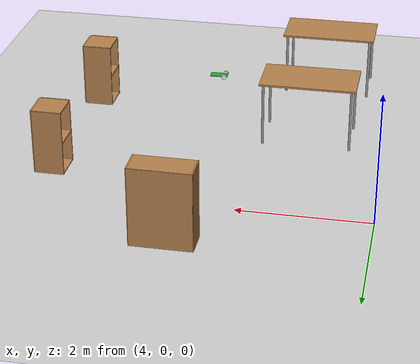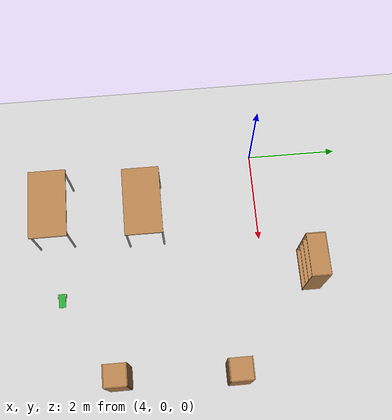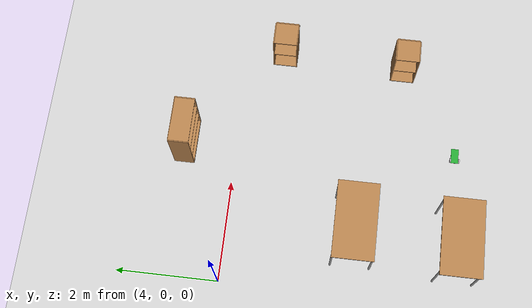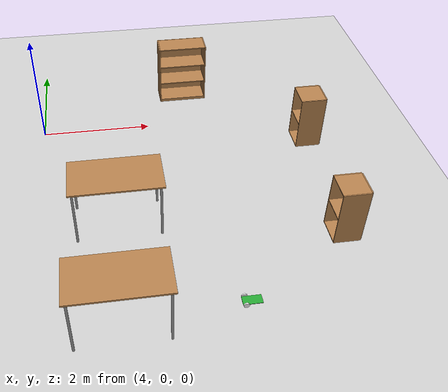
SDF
<sdf version="1.6">
 <world name="default">
  <model name="ground_plane">
   <static>1</static>
   <link name="link">
    <collision name="collision">
     <geometry><plane><normal>0 0 1</normal><size>100 100</size></plane></geometry>
     <surface><friction><ode><mu>100</mu><mu2>50</mu2></ode></friction></surface>
    </collision>
    <visual name="visual">
     <cast_shadows>0</cast_shadows>
     <geometry><plane><normal>0 0 1</normal><size>100 100</size></plane></geometry>
     <material>
      <script><uri>file://media/materials/scripts/gazebo.material</uri><name>Gazebo/Grey</name></script>
     </material>
    </visual>
   </link>
  </model>
  <model name="two_wheel">
   <link name="link_0">
    <pose>-0.000367 0.008018 0.045 0 -0 0</pose>
    <inertial>
     <mass>1</mass>
     <inertia>
      <ixx>0.166667</ixx>
      <ixy>0</ixy>
      <ixz>0</ixz>
      <iyy>0.166667</iyy>
      <iyz>0</iyz>
      <izz>0.166667</izz>
     </inertia>
    </inertial>
    <visual name="visual">
     <geometry><box><size>0.3 0.15 0.01</size></box></geometry>
     <material>
      <lighting>1</lighting>
      <script><uri>file://media/materials/scripts/gazebo.material</uri><name>Gazebo/Green</name></script>
      <ambient>0 1 0 1</ambient>
      <diffuse>0.7 0.7 0.7 1</diffuse>
      <specular>0.01 0.01 0.01 1</specular>
      <emissive>0 0 0 1</emissive>
      <shader type="vertex"><normal_map>__default__</normal_map></shader>
     </material>
    </visual>
    <collision name="collision">
     <geometry><box><size>0.3 0.15 0.01</size></box></geometry>
     <surface>
      <friction>
       <ode><mu>1</mu><mu2>1</mu2><fdir1>0 0 0</fdir1><slip1>0</slip1><slip2>0</slip2></ode>
       <torsional>
        <coefficient>1</coefficient>
        <patch_radius>0</patch_radius>
        <surface_radius>0</surface_radius>
        <use_patch_radius>1</use_patch_radius>
        <ode><slip>0</slip></ode>
       </torsional>
      </friction>
      <bounce><restitution_coefficient>0</restitution_coefficient><threshold>1e+06</threshold></bounce>
      <contact>
       <collide_without_contact>0</collide_without_contact>
       <collide_without_contact_bitmask>1</collide_without_contact_bitmask>
       <collide_bitmask>1</collide_bitmask>
       <ode>
        <soft_cfm>0</soft_cfm>
        <soft_erp>0.2</soft_erp>
        <kp>1e+13</kp>
        <kd>1</kd>
        <max_vel>0.01</max_vel>
        <min_depth>0</min_depth>
       </ode>
       <bullet>
        <split_impulse>1</split_impulse>
        <split_impulse_penetration_threshold>-0.01</split_impulse_penetration_threshold>
        <soft_cfm>0</soft_cfm>
        <soft_erp>0.2</soft_erp>
        <kp>1e+13</kp>
        <kd>1</kd>
       </bullet>
      </contact>
     </surface>
    </collision>
   </link>
   <link name="link_0_0">
    <pose>0.134726 0.004188 0.02 0 -0 0</pose>
    <inertial>
     <mass>1</mass>
     <inertia><ixx>0.1</ixx><ixy>0</ixy><ixz>0</ixz><iyy>0.1</iyy><iyz>0</iyz><izz>0.1</izz></inertia>
    </inertial>
    <visual name="visual">
     <geometry><sphere><radius>0.02</radius></sphere></geometry>
     <material>
      <lighting>1</lighting>
      <script><uri>file://media/materials/scripts/gazebo.material</uri><name>Gazebo/Grey</name></script>
      <ambient>0.3 0.3 0.3 1</ambient>
      <diffuse>0.7 0.7 0.7 1</diffuse>
      <specular>0.01 0.01 0.01 1</specular>
      <emissive>0 0 0 1</emissive>
      <shader type="vertex"><normal_map>__default__</normal_map></shader>
     </material>
    </visual>
    <collision name="collision">
     <geometry><sphere><radius>0.02</radius></sphere></geometry>
     <surface>
      <friction>
       <ode><mu>1</mu><mu2>1</mu2><fdir1>0 0 0</fdir1><slip1>0</slip1><slip2>0</slip2></ode>
       <torsional>
        <coefficient>1</coefficient>
        <patch_radius>0</patch_radius>
        <surface_radius>0</surface_radius>
        <use_patch_radius>1</use_patch_radius>
        <ode><slip>0</slip></ode>
       </torsional>
      </friction>
      <bounce><restitution_coefficient>0</restitution_coefficient><threshold>1e+06</threshold></bounce>
      <contact>
       <collide_without_contact>0</collide_without_contact>
       <collide_without_contact_bitmask>1</collide_without_contact_bitmask>
       <collide_bitmask>1</collide_bitmask>
       <ode>
        <soft_cfm>0</soft_cfm>
        <soft_erp>0.2</soft_erp>
        <kp>1e+13</kp>
        <kd>1</kd>
        <max_vel>0.01</max_vel>
        <min_depth>0</min_depth>
       </ode>
       <bullet>
        <split_impulse>1</split_impulse>
        <split_impulse_penetration_threshold>-0.01</split_impulse_penetration_threshold>
        <soft_cfm>0</soft_cfm>
        <soft_erp>0.2</soft_erp>
        <kp>1e+13</kp>
        <kd>1</kd>
       </bullet>
      </contact>
     </surface>
    </collision>
   </link>
   <link name="link_1">
    <pose>-0.100367 -0.076982 0.045 1.5707 -0 0</pose>
    <inertial>
     <mass>1</mass>
     <inertia><ixx>0.145833</ixx><ixy>0</ixy><ixz>0</ixz><iyy>0.145833</iyy><iyz>0</iyz><izz>0.125</izz></inertia>
    </inertial>
    <visual name="visual">
     <geometry><cylinder><radius>0.045</radius><length>0.02</length></cylinder></geometry>
     <material>
      <lighting>1</lighting>
      <script><uri>file://media/materials/scripts/gazebo.material</uri><name>Gazebo/White</name></script>
      <ambient>1 1 1 1</ambient>
      <diffuse>0.7 0.7 0.7 1</diffuse>
      <specular>0.01 0.01 0.01 1</specular>
      <emissive>0 0 0 1</emissive>
      <shader type="vertex"><normal_map>__default__</normal_map></shader>
     </material>
    </visual>
    <collision name="collision">
     <geometry><cylinder><radius>0.045</radius><length>0.02</length></cylinder></geometry>
     <surface>
      <friction>
       <ode><mu>1</mu><mu2>1</mu2><fdir1>0 0 0</fdir1><slip1>0</slip1><slip2>0</slip2></ode>
       <torsional>
        <coefficient>1</coefficient>
        <patch_radius>0</patch_radius>
        <surface_radius>0</surface_radius>
        <use_patch_radius>1</use_patch_radius>
        <ode><slip>0</slip></ode>
       </torsional>
      </friction>
      <bounce><restitution_coefficient>0</restitution_coefficient><threshold>1e+06</threshold></bounce>
      <contact>
       <collide_without_contact>0</collide_without_contact>
       <collide_without_contact_bitmask>1</collide_without_contact_bitmask>
       <collide_bitmask>1</collide_bitmask>
       <ode>
        <soft_cfm>0</soft_cfm>
        <soft_erp>0.2</soft_erp>
        <kp>1e+13</kp>
        <kd>1</kd>
        <max_vel>0.01</max_vel>
        <min_depth>0</min_depth>
       </ode>
       <bullet>
        <split_impulse>1</split_impulse>
        <split_impulse_penetration_threshold>-0.01</split_impulse_penetration_threshold>
        <soft_cfm>0</soft_cfm>
        <soft_erp>0.2</soft_erp>
        <kp>1e+13</kp>
        <kd>1</kd>
       </bullet>
      </contact>
     </surface>
    </collision>
   </link>
   <link name="link_1_clone">
    <pose>-0.100367 0.093018 0.045 1.5707 -0 0</pose>
    <inertial>
     <mass>1</mass>
     <inertia><ixx>0.145833</ixx><ixy>0</ixy><ixz>0</ixz><iyy>0.145833</iyy><iyz>0</iyz><izz>0.125</izz></inertia>
    </inertial>
    <visual name="visual">
     <geometry><cylinder><radius>0.045</radius><length>0.02</length></cylinder></geometry>
     <material>
      <lighting>1</lighting>
      <script><uri>file://media/materials/scripts/gazebo.material</uri><name>Gazebo/White</name></script>
      <ambient>1 1 1 1</ambient>
      <diffuse>0.7 0.7 0.7 1</diffuse>
      <specular>0.01 0.01 0.01 1</specular>
      <emissive>0 0 0 1</emissive>
      <shader type="vertex"><normal_map>__default__</normal_map></shader>
     </material>
    </visual>
    <collision name="collision">
     <geometry><cylinder><radius>0.045</radius><length>0.02</length></cylinder></geometry>
     <surface>
      <friction>
       <ode><mu>1</mu><mu2>1</mu2><fdir1>0 0 0</fdir1><slip1>0</slip1><slip2>0</slip2></ode>
       <torsional>
        <coefficient>1</coefficient>
        <patch_radius>0</patch_radius>
        <surface_radius>0</surface_radius>
        <use_patch_radius>1</use_patch_radius>
        <ode><slip>0</slip></ode>
       </torsional>
      </friction>
      <bounce><restitution_coefficient>0</restitution_coefficient><threshold>1e+06</threshold></bounce>
      <contact>
       <collide_without_contact>0</collide_without_contact>
       <collide_without_contact_bitmask>1</collide_without_contact_bitmask>
       <collide_bitmask>1</collide_bitmask>
       <ode>
        <soft_cfm>0</soft_cfm>
        <soft_erp>0.2</soft_erp>
        <kp>1e+13</kp>
        <kd>1</kd>
        <max_vel>0.01</max_vel>
        <min_depth>0</min_depth>
       </ode>
       <bullet>
        <split_impulse>1</split_impulse>
        <split_impulse_penetration_threshold>-0.01</split_impulse_penetration_threshold>
        <soft_cfm>0</soft_cfm>
        <soft_erp>0.2</soft_erp>
        <kp>1e+13</kp>
        <kd>1</kd>
       </bullet>
      </contact>
     </surface>
    </collision>
   </link>
   <joint name="link_0_JOINT_1_0" type="ball">
    <parent>link_0</parent>
    <child>link_0_0</child>
    <physics>
     <ode><limit><cfm>0</cfm><erp>0.2</erp></limit><suspension><cfm>0</cfm><erp>0.2</erp></suspension></ode>
    </physics>
   </joint>
   <joint name="link_0_JOINT_1" type="revolute">
    <parent>link_0</parent>
    <child>link_1</child>
    <axis>
     <xyz>0 0 1</xyz>
     <use_parent_model_frame>0</use_parent_model_frame>
     <limit>
      <lower>-1.79769e+308</lower>
      <upper>1.79769e+308</upper>
      <effort>-1</effort>
      <velocity>-1</velocity>
     </limit>
     <dynamics>
      <spring_reference>0</spring_reference>
      <spring_stiffness>0</spring_stiffness>
      <damping>0</damping>
      <friction>0</friction>
     </dynamics>
    </axis>
    <physics>
     <ode><limit><cfm>0</cfm><erp>0.2</erp></limit><suspension><cfm>0</cfm><erp>0.2</erp></suspension></ode>
    </physics>
   </joint>
   <joint name="link_0_JOINT_2" type="revolute">
    <parent>link_0</parent>
    <child>link_1_clone</child>
    <axis>
     <xyz>0 0 1</xyz>
     <use_parent_model_frame>0</use_parent_model_frame>
     <limit>
      <lower>-1.79769e+308</lower>
      <upper>1.79769e+308</upper>
      <effort>-1</effort>
      <velocity>-1</velocity>
     </limit>
     <dynamics>
      <spring_reference>0</spring_reference>
      <spring_stiffness>0</spring_stiffness>
      <damping>0</damping>
      <friction>0</friction>
     </dynamics>
    </axis>
    <physics>
     <ode><limit><cfm>0</cfm><erp>0.2</erp></limit><suspension><cfm>0</cfm><erp>0.2</erp></suspension></ode>
    </physics>
   </joint>
   <static>0</static>
   <pose>7.05936 -4.42746 0 5e-06 4e-06 0.003503</pose>
  </model>
  <model name="table">
   <static>1</static>
   <link name="link">
    <collision name="surface">
     <pose>0 0 1 0 -0 0</pose>
     <geometry><box><size>1.5 0.8 0.03</size></box></geometry>
     <surface><friction><ode><mu>0.6</mu><mu2>0.6</mu2></ode></friction></surface>
    </collision>
    <visual name="visual1">
     <pose>0 0 1 0 -0 0</pose>
     <geometry><box><size>1.5 0.8 0.03</size></box></geometry>
     <material>
      <script><uri>file://media/materials/scripts/gazebo.material</uri><name>Gazebo/Wood</name></script>
     </material>
    </visual>
    <collision name="front_left_leg">
     <pose>0.68 0.38 0.5 0 -0 0</pose>
     <geometry><cylinder><radius>0.02</radius><length>1</length></cylinder></geometry>
    </collision>
    <visual name="front_left_leg">
     <pose>0.68 0.38 0.5 0 -0 0</pose>
     <geometry><cylinder><radius>0.02</radius><length>1</length></cylinder></geometry>
     <material>
      <script><uri>file://media/materials/scripts/gazebo.material</uri><name>Gazebo/Grey</name></script>
     </material>
    </visual>
    <collision name="front_right_leg">
     <pose>0.68 -0.38 0.5 0 -0 0</pose>
     <geometry><cylinder><radius>0.02</radius><length>1</length></cylinder></geometry>
    </collision>
    <visual name="front_right_leg">
     <pose>0.68 -0.38 0.5 0 -0 0</pose>
     <geometry><cylinder><radius>0.02</radius><length>1</length></cylinder></geometry>
     <material>
      <script><uri>file://media/materials/scripts/gazebo.material</uri><name>Gazebo/Grey</name></script>
     </material>
    </visual>
    <collision name="back_right_leg">
     <pose>-0.68 -0.38 0.5 0 -0 0</pose>
     <geometry><cylinder><radius>0.02</radius><length>1</length></cylinder></geometry>
    </collision>
    <visual name="back_right_leg">
     <pose>-0.68 -0.38 0.5 0 -0 0</pose>
     <geometry><cylinder><radius>0.02</radius><length>1</length></cylinder></geometry>
     <material>
      <script><uri>file://media/materials/scripts/gazebo.material</uri><name>Gazebo/Grey</name></script>
     </material>
    </visual>
    <collision name="back_left_leg">
     <pose>-0.68 0.38 0.5 0 -0 0</pose>
     <geometry><cylinder><radius>0.02</radius><length>1</length></cylinder></geometry>
    </collision>
    <visual name="back_left_leg">
     <pose>-0.68 0.38 0.5 0 -0 0</pose>
     <geometry><cylinder><radius>0.02</radius><length>1</length></cylinder></geometry>
     <material>
      <script><uri>file://media/materials/scripts/gazebo.material</uri><name>Gazebo/Grey</name></script>
     </material>
    </visual>
   </link>
   <pose>5.15607 -4.49293 0 0 -0 0</pose>
  </model>
  <model name="table_0">
   <static>1</static>
   <link name="link">
    <collision name="surface">
     <pose>0 0 1 0 -0 0</pose>
     <geometry><box><size>1.5 0.8 0.03</size></box></geometry>
     <surface><friction><ode><mu>0.6</mu><mu2>0.6</mu2></ode></friction></surface>
    </collision>
    <visual name="visual1">
     <pose>0 0 1 0 -0 0</pose>
     <geometry><box><size>1.5 0.8 0.03</size></box></geometry>
     <material>
      <script><uri>file://media/materials/scripts/gazebo.material</uri><name>Gazebo/Wood</name></script>
     </material>
    </visual>
    <collision name="front_left_leg">
     <pose>0.68 0.38 0.5 0 -0 0</pose>
     <geometry><cylinder><radius>0.02</radius><length>1</length></cylinder></geometry>
    </collision>
    <visual name="front_left_leg">
     <pose>0.68 0.38 0.5 0 -0 0</pose>
     <geometry><cylinder><radius>0.02</radius><length>1</length></cylinder></geometry>
     <material>
      <script><uri>file://media/materials/scripts/gazebo.material</uri><name>Gazebo/Grey</name></script>
     </material>
    </visual>
    <collision name="front_right_leg">
     <pose>0.68 -0.38 0.5 0 -0 0</pose>
     <geometry><cylinder><radius>0.02</radius><length>1</length></cylinder></geometry>
    </collision>
    <visual name="front_right_leg">
     <pose>0.68 -0.38 0.5 0 -0 0</pose>
     <geometry><cylinder><radius>0.02</radius><length>1</length></cylinder></geometry>
     <material>
      <script><uri>file://media/materials/scripts/gazebo.material</uri><name>Gazebo/Grey</name></script>
     </material>
    </visual>
    <collision name="back_right_leg">
     <pose>-0.68 -0.38 0.5 0 -0 0</pose>
     <geometry><cylinder><radius>0.02</radius><length>1</length></cylinder></geometry>
    </collision>
    <visual name="back_right_leg">
     <pose>-0.68 -0.38 0.5 0 -0 0</pose>
     <geometry><cylinder><radius>0.02</radius><length>1</length></cylinder></geometry>
     <material>
      <script><uri>file://media/materials/scripts/gazebo.material</uri><name>Gazebo/Grey</name></script>
     </material>
    </visual>
    <collision name="back_left_leg">
     <pose>-0.68 0.38 0.5 0 -0 0</pose>
     <geometry><cylinder><radius>0.02</radius><length>1</length></cylinder></geometry>
    </collision>
    <visual name="back_left_leg">
     <pose>-0.68 0.38 0.5 0 -0 0</pose>
     <geometry><cylinder><radius>0.02</radius><length>1</length></cylinder></geometry>
     <material>
      <script><uri>file://media/materials/scripts/gazebo.material</uri><name>Gazebo/Grey</name></script>
     </material>
    </visual>
   </link>
   <pose>5.25448 -2.49944 0 0 -0 0</pose>
  </model>
  <model name="bookshelf_1">
   <static>1</static>
   <link name="link">
    <inertial><mass>1</mass></inertial>
    <collision name="back">
     <pose>0 0.005 0.6 0 -0 0</pose>
     <geometry><box><size>0.9 0.01 1.2</size></box></geometry>
    </collision>
    <visual name="visual1">
     <pose>0 0.005 0.6 0 -0 0</pose>
     <geometry><box><size>0.9 0.01 1.2</size></box></geometry>
     <material>
      <script><uri>file://media/materials/scripts/gazebo.material</uri><name>Gazebo/Wood</name></script>
     </material>
    </visual>
    <collision name="left_side">
     <pose>0.45 -0.195 0.6 0 -0 0</pose>
     <geometry><box><size>0.02 0.4 1.2</size></box></geometry>
    </collision>
    <visual name="visual2">
     <pose>0.45 -0.195 0.6 0 -0 0</pose>
     <geometry><box><size>0.02 0.4 1.2</size></box></geometry>
     <material>
      <script><uri>file://media/materials/scripts/gazebo.material</uri><name>Gazebo/Wood</name></script>
     </material>
    </visual>
    <collision name="right_side">
     <pose>-0.45 -0.195 0.6 0 -0 0</pose>
     <geometry><box><size>0.02 0.4 1.2</size></box></geometry>
    </collision>
    <visual name="visual3">
     <pose>-0.45 -0.195 0.6 0 -0 0</pose>
     <geometry><box><size>0.02 0.4 1.2</size></box></geometry>
     <material>
      <script><uri>file://media/materials/scripts/gazebo.material</uri><name>Gazebo/Wood</name></script>
     </material>
    </visual>
    <collision name="bottom">
     <pose>0 -0.195 0.03 0 -0 0</pose>
     <geometry><box><size>0.88 0.4 0.06</size></box></geometry>
    </collision>
    <visual name="visual4">
     <pose>0 -0.195 0.03 0 -0 0</pose>
     <geometry><box><size>0.88 0.4 0.06</size></box></geometry>
     <material>
      <script><uri>file://media/materials/scripts/gazebo.material</uri><name>Gazebo/Wood</name></script>
     </material>
    </visual>
    <collision name="top">
     <pose>0 -0.195 1.19 0 -0 0</pose>
     <geometry><box><size>0.88 0.4 0.02</size></box></geometry>
    </collision>
    <visual name="visual5">
     <pose>0 -0.195 1.19 0 -0 0</pose>
     <geometry><box><size>0.88 0.4 0.02</size></box></geometry>
     <material>
      <script><uri>file://media/materials/scripts/gazebo.material</uri><name>Gazebo/Wood</name></script>
     </material>
    </visual>
    <collision name="low_shelf">
     <pose>0 -0.195 0.43 0 -0 0</pose>
     <geometry><box><size>0.88 0.4 0.02</size></box></geometry>
    </collision>
    <visual name="visual6">
     <pose>0 -0.195 0.43 0 -0 0</pose>
     <geometry><box><size>0.88 0.4 0.02</size></box></geometry>
     <material>
      <script><uri>file://media/materials/scripts/gazebo.material</uri><name>Gazebo/Wood</name></script>
     </material>
    </visual>
    <collision name="high_shelf">
     <pose>0 -0.195 0.8 0 -0 0</pose>
     <geometry><box><size>0.88 0.4 0.02</size></box></geometry>
    </collision>
    <visual name="visual7">
     <pose>0 -0.195 0.8 0 -0 0</pose>
     <geometry><box><size>0.88 0.4 0.02</size></box></geometry>
     <material>
      <script><uri>file://media/materials/scripts/gazebo.material</uri><name>Gazebo/Wood</name></script>
     </material>
    </visual>
   </link>
   <pose>6.79856 1.1997 0 0 -0 0</pose>
  </model>
  <model name="cabinet">
   <static>1</static>
   <link name="cabinet_bottom_plate">
    <inertial>
     <pose>0 0 -1 0 -0 0</pose>
     <inertia><ixx>2.05</ixx><ixy>0</ixy><ixz>0</ixz><iyy>2.05</iyy><iyz>0</iyz><izz>2.05</izz></inertia>
     <mass>25</mass>
    </inertial>
    <collision name="cabinet_bottom_plate_geom">
     <pose>0 0 0.01 0 -0 0</pose>
     <geometry><box><size>0.45 0.45 0.02</size></box></geometry>
    </collision>
    <visual name="cabinet_bottom_plate_geom_visual">
     <pose>0 0 0.01 0 -0 0</pose>
     <geometry><box><size>0.45 0.45 0.02</size></box></geometry>
     <material>
      <script><uri>file://media/materials/scripts/gazebo.material</uri><name>Gazebo/Wood</name></script>
     </material>
    </visual>
    <collision name="cabinet_bottom_plate_geom_cabinet_back_plate">
     <pose>0.235 0 0.51 0 -0 0</pose>
     <geometry><box><size>0.02 0.45 1.02</size></box></geometry>
    </collision>
    <visual name="cabinet_bottom_plate_geom_cabinet_back_plate_visual">
     <pose>0.235 0 0.51 0 -0 0</pose>
     <geometry><box><size>0.02 0.45 1.02</size></box></geometry>
     <material>
      <script><uri>file://media/materials/scripts/gazebo.material</uri><name>Gazebo/Wood</name></script>
     </material>
    </visual>
    <collision name="cabinet_bottom_plate_geom_cabinet_left_plate">
     <pose>0 0.235 0.51 0 -0 0</pose>
     <geometry><box><size>0.45 0.02 1.02</size></box></geometry>
    </collision>
    <visual name="cabinet_bottom_plate_geom_cabinet_left_plate_visual">
     <pose>0 0.235 0.51 0 -0 0</pose>
     <geometry><box><size>0.45 0.02 1.02</size></box></geometry>
     <material>
      <script><uri>file://media/materials/scripts/gazebo.material</uri><name>Gazebo/Wood</name></script>
     </material>
    </visual>
    <collision name="cabinet_bottom_plate_geom_cabinet_middle_plate">
     <pose>0 0 0.51 0 -0 0</pose>
     <geometry><box><size>0.45 0.45 0.02</size></box></geometry>
    </collision>
    <visual name="cabinet_bottom_plate_geom_cabinet_middle_plate_visual">
     <pose>0 0 0.51 0 -0 0</pose>
     <geometry><box><size>0.45 0.45 0.02</size></box></geometry>
     <material>
      <script><uri>file://media/materials/scripts/gazebo.material</uri><name>Gazebo/Wood</name></script>
     </material>
    </visual>
    <collision name="cabinet_bottom_plate_geom_cabinet_right_plate">
     <pose>0 -0.235 0.51 0 -0 0</pose>
     <geometry><box><size>0.45 0.02 1.02</size></box></geometry>
    </collision>
    <visual name="cabinet_bottom_plate_geom_cabinet_right_plate_visual">
     <pose>0 -0.235 0.51 0 -0 0</pose>
     <geometry><box><size>0.45 0.02 1.02</size></box></geometry>
     <material>
      <script><uri>file://media/materials/scripts/gazebo.material</uri><name>Gazebo/Wood</name></script>
     </material>
    </visual>
    <collision name="cabinet_bottom_plate_geom_cabinet_top_plate">
     <pose>0 0 1.01 0 -0 0</pose>
     <geometry><box><size>0.45 0.45 0.02</size></box></geometry>
    </collision>
    <visual name="cabinet_bottom_plate_geom_cabinet_top_plate_visual">
     <pose>0 0 1.01 0 -0 0</pose>
     <geometry><box><size>0.45 0.45 0.02</size></box></geometry>
     <material>
      <script><uri>file://media/materials/scripts/gazebo.material</uri><name>Gazebo/Wood</name></script>
     </material>
    </visual>
   </link>
   <pose>8.91587 -0.779866 0 0 -0 0</pose>
  </model>
  <model name="cabinet_0">
   <static>1</static>
   <link name="cabinet_bottom_plate">
    <inertial>
     <pose>0 0 -1 0 -0 0</pose>
     <inertia><ixx>2.05</ixx><ixy>0</ixy><ixz>0</ixz><iyy>2.05</iyy><iyz>0</iyz><izz>2.05</izz></inertia>
     <mass>25</mass>
    </inertial>
    <collision name="cabinet_bottom_plate_geom">
     <pose>0 0 0.01 0 -0 0</pose>
     <geometry><box><size>0.45 0.45 0.02</size></box></geometry>
    </collision>
    <visual name="cabinet_bottom_plate_geom_visual">
     <pose>0 0 0.01 0 -0 0</pose>
     <geometry><box><size>0.45 0.45 0.02</size></box></geometry>
     <material>
      <script><uri>file://media/materials/scripts/gazebo.material</uri><name>Gazebo/Wood</name></script>
     </material>
    </visual>
    <collision name="cabinet_bottom_plate_geom_cabinet_back_plate">
     <pose>0.235 0 0.51 0 -0 0</pose>
     <geometry><box><size>0.02 0.45 1.02</size></box></geometry>
    </collision>
    <visual name="cabinet_bottom_plate_geom_cabinet_back_plate_visual">
     <pose>0.235 0 0.51 0 -0 0</pose>
     <geometry><box><size>0.02 0.45 1.02</size></box></geometry>
     <material>
      <script><uri>file://media/materials/scripts/gazebo.material</uri><name>Gazebo/Wood</name></script>
     </material>
    </visual>
    <collision name="cabinet_bottom_plate_geom_cabinet_left_plate">
     <pose>0 0.235 0.51 0 -0 0</pose>
     <geometry><box><size>0.45 0.02 1.02</size></box></geometry>
    </collision>
    <visual name="cabinet_bottom_plate_geom_cabinet_left_plate_visual">
     <pose>0 0.235 0.51 0 -0 0</pose>
     <geometry><box><size>0.45 0.02 1.02</size></box></geometry>
     <material>
      <script><uri>file://media/materials/scripts/gazebo.material</uri><name>Gazebo/Wood</name></script>
     </material>
    </visual>
    <collision name="cabinet_bottom_plate_geom_cabinet_middle_plate">
     <pose>0 0 0.51 0 -0 0</pose>
     <geometry><box><size>0.45 0.45 0.02</size></box></geometry>
    </collision>
    <visual name="cabinet_bottom_plate_geom_cabinet_middle_plate_visual">
     <pose>0 0 0.51 0 -0 0</pose>
     <geometry><box><size>0.45 0.45 0.02</size></box></geometry>
     <material>
      <script><uri>file://media/materials/scripts/gazebo.material</uri><name>Gazebo/Wood</name></script>
     </material>
    </visual>
    <collision name="cabinet_bottom_plate_geom_cabinet_right_plate">
     <pose>0 -0.235 0.51 0 -0 0</pose>
     <geometry><box><size>0.45 0.02 1.02</size></box></geometry>
    </collision>
    <visual name="cabinet_bottom_plate_geom_cabinet_right_plate_visual">
     <pose>0 -0.235 0.51 0 -0 0</pose>
     <geometry><box><size>0.45 0.02 1.02</size></box></geometry>
     <material>
      <script><uri>file://media/materials/scripts/gazebo.material</uri><name>Gazebo/Wood</name></script>
     </material>
    </visual>
    <collision name="cabinet_bottom_plate_geom_cabinet_top_plate">
     <pose>0 0 1.01 0 -0 0</pose>
     <geometry><box><size>0.45 0.45 0.02</size></box></geometry>
    </collision>
    <visual name="cabinet_bottom_plate_geom_cabinet_top_plate_visual">
     <pose>0 0 1.01 0 -0 0</pose>
     <geometry><box><size>0.45 0.45 0.02</size></box></geometry>
     <material>
      <script><uri>file://media/materials/scripts/gazebo.material</uri><name>Gazebo/Wood</name></script>
     </material>
    </visual>
   </link>
   <pose>8.82444 -3.23845 0 0 -0 0</pose>
  </model>
 </world>
</sdf>
